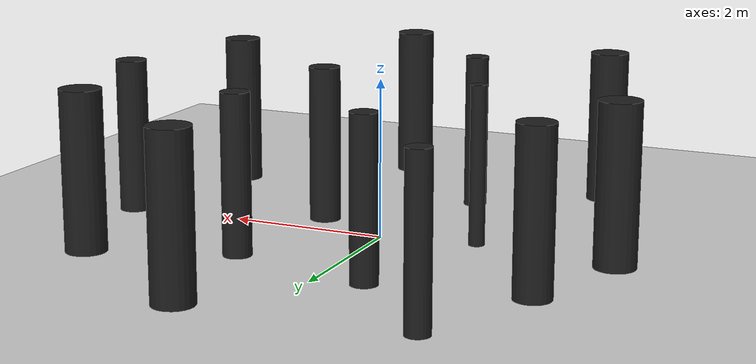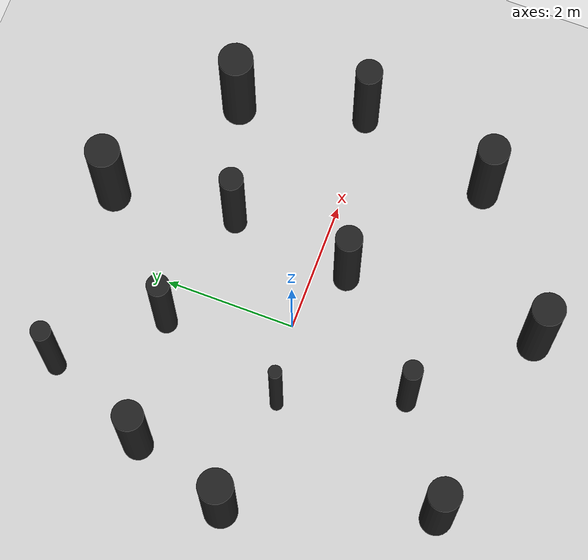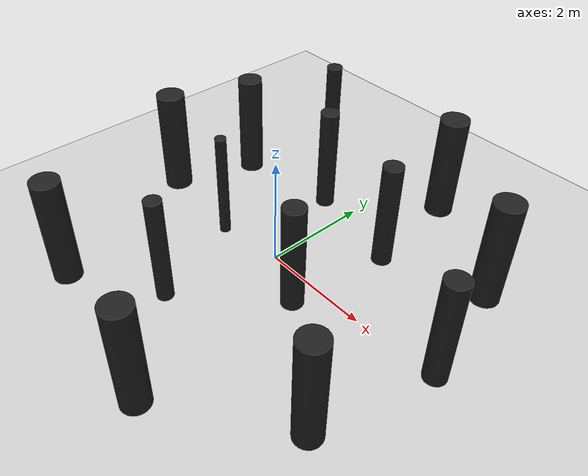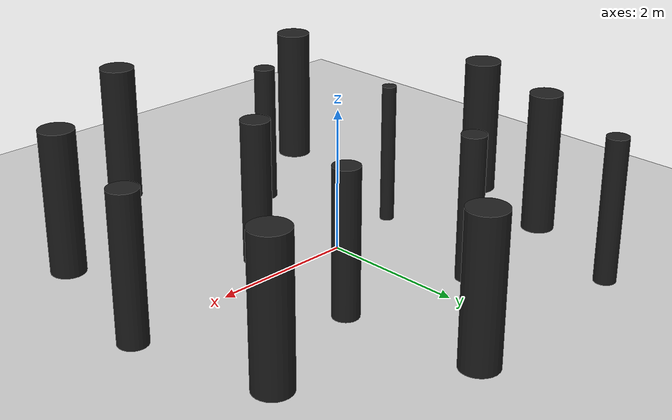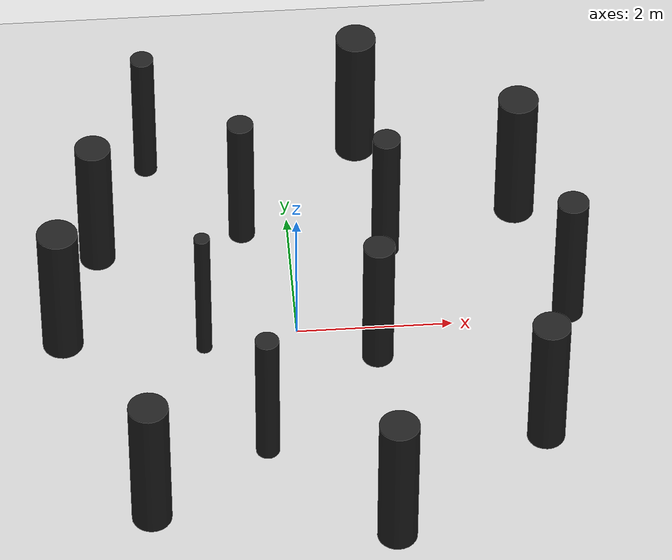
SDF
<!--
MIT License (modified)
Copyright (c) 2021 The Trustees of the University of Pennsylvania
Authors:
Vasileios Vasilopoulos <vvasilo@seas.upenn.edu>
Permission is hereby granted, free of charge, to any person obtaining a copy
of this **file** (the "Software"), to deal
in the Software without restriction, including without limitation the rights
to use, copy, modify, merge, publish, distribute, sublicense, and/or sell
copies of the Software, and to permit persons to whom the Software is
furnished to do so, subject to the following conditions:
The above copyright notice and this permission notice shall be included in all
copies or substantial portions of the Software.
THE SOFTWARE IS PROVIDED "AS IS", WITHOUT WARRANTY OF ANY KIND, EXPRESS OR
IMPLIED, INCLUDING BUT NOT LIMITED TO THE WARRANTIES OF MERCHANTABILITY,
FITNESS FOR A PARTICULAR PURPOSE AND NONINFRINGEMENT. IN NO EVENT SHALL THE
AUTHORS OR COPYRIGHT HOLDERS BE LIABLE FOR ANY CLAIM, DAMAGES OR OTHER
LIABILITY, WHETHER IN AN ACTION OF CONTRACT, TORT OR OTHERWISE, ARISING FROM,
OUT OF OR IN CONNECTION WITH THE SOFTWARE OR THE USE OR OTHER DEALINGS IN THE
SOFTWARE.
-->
<sdf version="1.6">
 <world name="default">
  <light name="sun" type="directional">
   <pose>0 0 10 0 -0 0</pose>
   <diffuse>0.8 0.8 0.8 1</diffuse>
   <specular>0.1 0.1 0.1 1</specular>
   <attenuation>
    <range>1000</range>
    <constant>0.9</constant>
    <linear>0.01</linear>
    <quadratic>0.001</quadratic>
   </attenuation>
   <direction>-0.5 0.5 -1</direction>
  </light>
  <model name="ground_plane">
   <static>1</static>
   <link name="link">
    <collision name="collision">
     <geometry><plane><normal>0 0 1</normal><size>100 100</size></plane></geometry>
     <surface><friction><ode><mu>100</mu><mu2>50</mu2></ode></friction></surface>
    </collision>
    <visual name="visual">
     <cast_shadows>0</cast_shadows>
     <geometry><plane><normal>0 0 1</normal><size>100 100</size></plane></geometry>
     <material>
      <script><uri>file://media/materials/scripts/gazebo.material</uri><name>Gazebo/Grey</name></script>
     </material>
    </visual>
   </link>
  </model>
  <model name="cylinder_1">
   <link name="link_0">
    <pose>-2 -3 1 0 -0 0</pose>
    <visual name="visual">
     <geometry><cylinder><radius>0.25</radius><length>2</length></cylinder></geometry>
     <material>
      <lighting>1</lighting>
      <script><uri>file://media/materials/scripts/gazebo.material</uri><name>Gazebo/Black</name></script>
      <shader type="pixel"/>
     </material>
    </visual>
    <collision name="collision">
     <geometry><cylinder><radius>0.25</radius><length>2</length></cylinder></geometry>
    </collision>
   </link>
   <static>1</static>
  </model>
  <model name="cylinder_2">
   <link name="link_0">
    <pose>-0.5 -2 1 0 -0 0</pose>
    <visual name="visual">
     <geometry><cylinder><radius>0.15</radius><length>2</length></cylinder></geometry>
     <material>
      <lighting>1</lighting>
      <script><uri>file://media/materials/scripts/gazebo.material</uri><name>Gazebo/Black</name></script>
      <shader type="pixel"/>
     </material>
    </visual>
    <collision name="collision">
     <geometry><cylinder><radius>0.15</radius><length>2</length></cylinder></geometry>
    </collision>
   </link>
   <static>1</static>
  </model>
  <model name="cylinder_3">
   <link name="link_0">
    <pose>-3 0 1 0 -0 0</pose>
    <visual name="visual">
     <geometry><cylinder><radius>0.26</radius><length>2</length></cylinder></geometry>
     <material>
      <lighting>1</lighting>
      <script><uri>file://media/materials/scripts/gazebo.material</uri><name>Gazebo/Black</name></script>
      <shader type="pixel"/>
     </material>
    </visual>
    <collision name="collision">
     <geometry><cylinder><radius>0.26</radius><length>2</length></cylinder></geometry>
    </collision>
   </link>
   <static>1</static>
  </model>
  <model name="cylinder_4">
   <link name="link_0">
    <pose>1 -3.5 1 0 -0 0</pose>
    <visual name="visual">
     <geometry><cylinder><radius>0.25</radius><length>2</length></cylinder></geometry>
     <material>
      <lighting>1</lighting>
      <script><uri>file://media/materials/scripts/gazebo.material</uri><name>Gazebo/Black</name></script>
      <shader type="pixel"/>
     </material>
    </visual>
    <collision name="collision">
     <geometry><cylinder><radius>0.25</radius><length>2</length></cylinder></geometry>
    </collision>
   </link>
   <static>1</static>
  </model>
  <model name="cylinder_5">
   <link name="link_0">
    <pose>-2.5 1.5 1 0 -0 0</pose>
    <visual name="visual">
     <geometry><cylinder><radius>0.23</radius><length>2</length></cylinder></geometry>
     <material>
      <lighting>1</lighting>
      <script><uri>file://media/materials/scripts/gazebo.material</uri><name>Gazebo/Black</name></script>
      <shader type="pixel"/>
     </material>
    </visual>
    <collision name="collision">
     <geometry><cylinder><radius>0.23</radius><length>2</length></cylinder></geometry>
    </collision>
   </link>
   <static>1</static>
  </model>
  <model name="cylinder_6">
   <link name="link_0">
    <pose>1 -0.5 1 0 -0 0</pose>
    <visual name="visual">
     <geometry><cylinder><radius>0.2</radius><length>2</length></cylinder></geometry>
     <material>
      <lighting>1</lighting>
      <script><uri>file://media/materials/scripts/gazebo.material</uri><name>Gazebo/Black</name></script>
      <shader type="pixel"/>
     </material>
    </visual>
    <collision name="collision">
     <geometry><cylinder><radius>0.2</radius><length>2</length></cylinder></geometry>
    </collision>
   </link>
   <static>1</static>
  </model>
  <model name="cylinder_7">
   <link name="link_0">
    <pose>-1.2 -0.2 1 0 -0 0</pose>
    <visual name="visual">
     <geometry><cylinder><radius>0.1</radius><length>2</length></cylinder></geometry>
     <material>
      <lighting>1</lighting>
      <script><uri>file://media/materials/scripts/gazebo.material</uri><name>Gazebo/Black</name></script>
      <shader type="pixel"/>
     </material>
    </visual>
    <collision name="collision">
     <geometry><cylinder><radius>0.1</radius><length>2</length></cylinder></geometry>
    </collision>
   </link>
   <static>1</static>
  </model>
  <model name="cylinder_8">
   <link name="link_0">
    <pose>1.25 1.4 1 0 -0 0</pose>
    <visual name="visual">
     <geometry><cylinder><radius>0.18</radius><length>2</length></cylinder></geometry>
     <material>
      <lighting>1</lighting>
      <script><uri>file://media/materials/scripts/gazebo.material</uri><name>Gazebo/Black</name></script>
      <shader type="pixel"/>
     </material>
    </visual>
    <collision name="collision">
     <geometry><cylinder><radius>0.18</radius><length>2</length></cylinder></geometry>
    </collision>
   </link>
   <static>1</static>
  </model>
  <model name="cylinder_9">
   <link name="link_0">
    <pose>-0.6 1.8 1 0 -0 0</pose>
    <visual name="visual">
     <geometry><cylinder><radius>0.17</radius><length>2</length></cylinder></geometry>
     <material>
      <lighting>1</lighting>
      <script><uri>file://media/materials/scripts/gazebo.material</uri><name>Gazebo/Black</name></script>
      <shader type="pixel"/>
     </material>
    </visual>
    <collision name="collision">
     <geometry><cylinder><radius>0.17</radius><length>2</length></cylinder></geometry>
    </collision>
   </link>
   <static>1</static>
  </model>
  <model name="cylinder_10">
   <link name="link_0">
    <pose>-1.8 3.1 1 0 -0 0</pose>
    <visual name="visual">
     <geometry><cylinder><radius>0.15</radius><length>2</length></cylinder></geometry>
     <material>
      <lighting>1</lighting>
      <script><uri>file://media/materials/scripts/gazebo.material</uri><name>Gazebo/Black</name></script>
      <shader type="pixel"/>
     </material>
    </visual>
    <collision name="collision">
     <geometry><cylinder><radius>0.15</radius><length>2</length></cylinder></geometry>
    </collision>
   </link>
   <static>1</static>
  </model>
  <model name="cylinder_11">
   <link name="link_0">
    <pose>3 -2 1 0 -0 0</pose>
    <visual name="visual">
     <geometry><cylinder><radius>0.24</radius><length>2</length></cylinder></geometry>
     <material>
      <lighting>1</lighting>
      <script><uri>file://media/materials/scripts/gazebo.material</uri><name>Gazebo/Black</name></script>
      <shader type="pixel"/>
     </material>
    </visual>
    <collision name="collision">
     <geometry><cylinder><radius>0.24</radius><length>2</length></cylinder></geometry>
    </collision>
   </link>
   <static>1</static>
  </model>
  <model name="cylinder_12">
   <link name="link_0">
    <pose>3.5 0.1 1 0 -0 0</pose>
    <visual name="visual">
     <geometry><cylinder><radius>0.2</radius><length>2</length></cylinder></geometry>
     <material>
      <lighting>1</lighting>
      <script><uri>file://media/materials/scripts/gazebo.material</uri><name>Gazebo/Black</name></script>
      <shader type="pixel"/>
     </material>
    </visual>
    <collision name="collision">
     <geometry><cylinder><radius>0.2</radius><length>2</length></cylinder></geometry>
    </collision>
   </link>
   <static>1</static>
  </model>
  <model name="cylinder_13">
   <link name="link_0">
    <pose>3 2 1 0 -0 0</pose>
    <visual name="visual">
     <geometry><cylinder><radius>0.26</radius><length>2</length></cylinder></geometry>
     <material>
      <lighting>1</lighting>
      <script><uri>file://media/materials/scripts/gazebo.material</uri><name>Gazebo/Black</name></script>
      <shader type="pixel"/>
     </material>
    </visual>
    <collision name="collision">
     <geometry><cylinder><radius>0.26</radius><length>2</length></cylinder></geometry>
    </collision>
   </link>
   <static>1</static>
  </model>
  <model name="cylinder_14">
   <link name="link_0">
    <pose>1 3.3 1 0 -0 0</pose>
    <visual name="visual">
     <geometry><cylinder><radius>0.26</radius><length>2</length></cylinder></geometry>
     <material>
      <lighting>1</lighting>
      <script><uri>file://media/materials/scripts/gazebo.material</uri><name>Gazebo/Black</name></script>
      <shader type="pixel"/>
     </material>
    </visual>
    <collision name="collision">
     <geometry><cylinder><radius>0.26</radius><length>2</length></cylinder></geometry>
    </collision>
   </link>
   <static>1</static>
  </model>
  <gravity>0 0 -9.8</gravity>
  <magnetic_field>6e-06 2.3e-05 -4.2e-05</magnetic_field>
  <atmosphere type="adiabatic"/>
  <physics name="default_physics" default="0" type="ode">
   <max_step_size>0.001</max_step_size>
   <real_time_factor>1</real_time_factor>
   <real_time_update_rate>1000</real_time_update_rate>
  </physics>
  <scene><ambient>0.4 0.4 0.4 1</ambient><background>0.7 0.7 0.7 1</background><shadows>1</shadows></scene>
  <spherical_coordinates>
   <surface_model>EARTH_WGS84</surface_model>
   <latitude_deg>0</latitude_deg>
   <longitude_deg>0</longitude_deg>
   <elevation>0</elevation>
   <heading_deg>0</heading_deg>
  </spherical_coordinates>
 </world>
</sdf>
